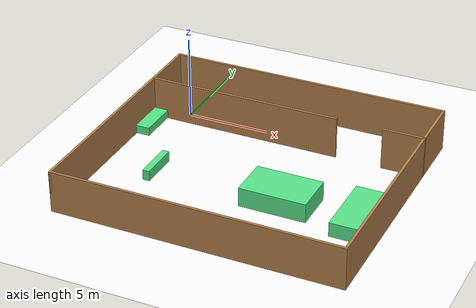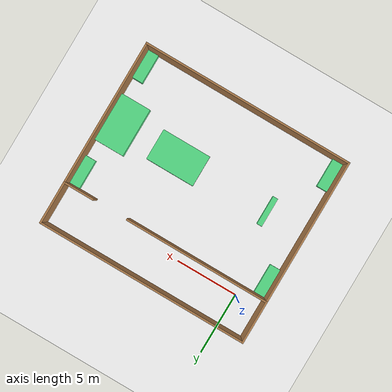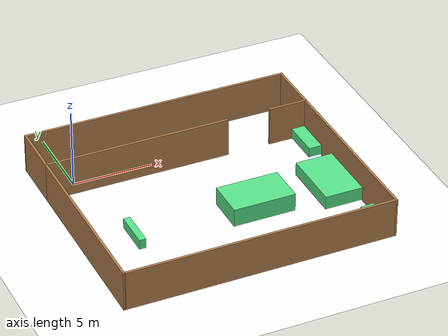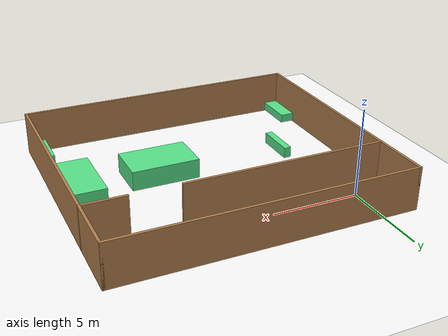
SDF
<sdf version="1.7">
 <world name="default">
  <light name="sun" type="directional">
   <pose>0 0 10 0 -0 0</pose>
   <diffuse>0.8 0.8 0.8 1</diffuse>
   <specular>0.2 0.2 0.2 1</specular>
   <attenuation>
    <range>1000</range>
    <constant>0.9</constant>
    <linear>0.01</linear>
    <quadratic>0.001</quadratic>
   </attenuation>
   <direction>-0.5 0.1 -0.9</direction>
   <spot><inner_angle>0</inner_angle><outer_angle>0</outer_angle><falloff>0</falloff></spot>
  </light>
  <model name="ground_plane">
   <static>1</static>
   <link name="link">
    <collision name="collision">
     <geometry><plane><normal>0 0 1</normal><size>100 100</size></plane></geometry>
     <surface>
      <contact><collide_bitmask>65535</collide_bitmask></contact>
      <friction><ode><mu>100</mu><mu2>50</mu2></ode></friction>
     </surface>
    </collision>
    <visual name="visual">
     <cast_shadows>0</cast_shadows>
     <geometry><plane><normal>0 0 1</normal><size>100 100</size></plane></geometry>
     <material>
      <ambient>1.0 1.0 1.0 1</ambient>
      <diffuse>1.0 1.0 1.0 1</diffuse>
      <specular>0.01 0.01 0.01 1</specular>
      <emissive>0 0 0 1</emissive>
     </material>
    </visual>
   </link>
  </model>
  <gravity>0 0 -9.8</gravity>
  <magnetic_field>6e-06 2.3e-05 -4.2e-05</magnetic_field>
  <atmosphere type="adiabatic"/>
  <physics type="ode">
   <max_step_size>0.001</max_step_size>
   <real_time_factor>1</real_time_factor>
   <real_time_update_rate>1000</real_time_update_rate>
  </physics>
  <scene><ambient>0.4 0.4 0.4 1</ambient><background>0.7 0.7 0.7 1</background><shadows>1</shadows></scene>
  <audio><device>default</device></audio>
  <spherical_coordinates>
   <surface_model>EARTH_WGS84</surface_model>
   <latitude_deg>0</latitude_deg>
   <longitude_deg>0</longitude_deg>
   <elevation>0</elevation>
   <heading_deg>0</heading_deg>
  </spherical_coordinates>
  <model name="Walls">
   <link name="Wall_0">
    <pose>-8.425 5.8 0 0 0 -1.5708</pose>
    <visual name="Wall_0_Visual">
     <pose>0 0 1.25 0 -0 0</pose>
     <geometry><box><size>3.5 0.15 2.5</size></box></geometry>
     <material>
      <script><uri>file://media/materials/scripts/gazebo.material</uri><name>Gazebo/Wood</name></script>
      <ambient>1 1 1 1</ambient>
      <shader type="pixel"/>
     </material>
     <meta><layer>0</layer></meta>
    </visual>
    <collision name="Wall_0_Collision">
     <pose>0 0 1.25 0 -0 0</pose>
     <geometry><box><size>3.5 0.15 2.5</size></box></geometry>
     <surface>
      <friction>
       <ode><mu>1</mu><mu2>1</mu2><fdir1>0 0 0</fdir1><slip1>0</slip1><slip2>0</slip2></ode>
       <torsional>
        <coefficient>1</coefficient>
        <patch_radius>0</patch_radius>
        <surface_radius>0</surface_radius>
        <use_patch_radius>1</use_patch_radius>
        <ode><slip>0</slip></ode>
       </torsional>
      </friction>
      <bounce><restitution_coefficient>0</restitution_coefficient><threshold>1e+06</threshold></bounce>
      <contact>
       <collide_without_contact>0</collide_without_contact>
       <collide_without_contact_bitmask>1</collide_without_contact_bitmask>
       <collide_bitmask>1</collide_bitmask>
       <ode>
        <soft_cfm>0</soft_cfm>
        <soft_erp>0.2</soft_erp>
        <kp>1e+13</kp>
        <kd>1</kd>
        <max_vel>0.01</max_vel>
        <min_depth>0</min_depth>
       </ode>
       <bullet>
        <split_impulse>1</split_impulse>
        <split_impulse_penetration_threshold>-0.01</split_impulse_penetration_threshold>
        <soft_cfm>0</soft_cfm>
        <soft_erp>0.2</soft_erp>
        <kp>1e+13</kp>
        <kd>1</kd>
       </bullet>
      </contact>
     </surface>
    </collision>
   </link>
   <link name="Wall_3">
    <pose>-2.625 4.125 0 0 -0 3.14159</pose>
    <visual name="Wall_3_Visual">
     <pose>0 0 1.25 0 -0 0</pose>
     <geometry><box><size>11.75 0.15 2.5</size></box></geometry>
     <material>
      <script><uri>file://media/materials/scripts/gazebo.material</uri><name>Gazebo/Wood</name></script>
      <ambient>1 1 1 1</ambient>
      <shader type="pixel"/>
     </material>
     <meta><layer>0</layer></meta>
    </visual>
    <collision name="Wall_3_Collision">
     <pose>0 0 1.25 0 -0 0</pose>
     <geometry><box><size>11.75 0.15 2.5</size></box></geometry>
     <surface>
      <friction>
       <ode><mu>1</mu><mu2>1</mu2><fdir1>0 0 0</fdir1><slip1>0</slip1><slip2>0</slip2></ode>
       <torsional>
        <coefficient>1</coefficient>
        <patch_radius>0</patch_radius>
        <surface_radius>0</surface_radius>
        <use_patch_radius>1</use_patch_radius>
        <ode><slip>0</slip></ode>
       </torsional>
      </friction>
      <bounce><restitution_coefficient>0</restitution_coefficient><threshold>1e+06</threshold></bounce>
      <contact>
       <collide_without_contact>0</collide_without_contact>
       <collide_without_contact_bitmask>1</collide_without_contact_bitmask>
       <collide_bitmask>1</collide_bitmask>
       <ode>
        <soft_cfm>0</soft_cfm>
        <soft_erp>0.2</soft_erp>
        <kp>1e+13</kp>
        <kd>1</kd>
        <max_vel>0.01</max_vel>
        <min_depth>0</min_depth>
       </ode>
       <bullet>
        <split_impulse>1</split_impulse>
        <split_impulse_penetration_threshold>-0.01</split_impulse_penetration_threshold>
        <soft_cfm>0</soft_cfm>
        <soft_erp>0.2</soft_erp>
        <kp>1e+13</kp>
        <kd>1</kd>
       </bullet>
      </contact>
     </surface>
    </collision>
   </link>
   <link name="Wall_35">
    <pose>8.425 5.8 0 0 0 -1.5708</pose>
    <visual name="Wall_35_Visual">
     <pose>0 0 1.25 0 -0 0</pose>
     <geometry><box><size>3.5 0.15 2.5</size></box></geometry>
     <material>
      <script><uri>file://media/materials/scripts/gazebo.material</uri><name>Gazebo/Wood</name></script>
      <ambient>1 1 1 1</ambient>
      <shader type="pixel"/>
     </material>
     <meta><layer>0</layer></meta>
    </visual>
    <collision name="Wall_35_Collision">
     <pose>0 0 1.25 0 -0 0</pose>
     <geometry><box><size>3.5 0.15 2.5</size></box></geometry>
     <surface>
      <friction>
       <ode><mu>1</mu><mu2>1</mu2><fdir1>0 0 0</fdir1><slip1>0</slip1><slip2>0</slip2></ode>
       <torsional>
        <coefficient>1</coefficient>
        <patch_radius>0</patch_radius>
        <surface_radius>0</surface_radius>
        <use_patch_radius>1</use_patch_radius>
        <ode><slip>0</slip></ode>
       </torsional>
      </friction>
      <bounce><restitution_coefficient>0</restitution_coefficient><threshold>1e+06</threshold></bounce>
      <contact>
       <collide_without_contact>0</collide_without_contact>
       <collide_without_contact_bitmask>1</collide_without_contact_bitmask>
       <collide_bitmask>1</collide_bitmask>
       <ode>
        <soft_cfm>0</soft_cfm>
        <soft_erp>0.2</soft_erp>
        <kp>1e+13</kp>
        <kd>1</kd>
        <max_vel>0.01</max_vel>
        <min_depth>0</min_depth>
       </ode>
       <bullet>
        <split_impulse>1</split_impulse>
        <split_impulse_penetration_threshold>-0.01</split_impulse_penetration_threshold>
        <soft_cfm>0</soft_cfm>
        <soft_erp>0.2</soft_erp>
        <kp>1e+13</kp>
        <kd>1</kd>
       </bullet>
      </contact>
     </surface>
    </collision>
   </link>
   <link name="Wall_36">
    <pose>7.25 4.125 0 0 -0 3.14159</pose>
    <visual name="Wall_36_Visual">
     <pose>0 0 1.25 0 -0 0</pose>
     <geometry><box><size>2.5 0.15 2.5</size></box></geometry>
     <material>
      <script><uri>file://media/materials/scripts/gazebo.material</uri><name>Gazebo/Wood</name></script>
      <ambient>1 1 1 1</ambient>
      <shader type="pixel"/>
     </material>
     <meta><layer>0</layer></meta>
    </visual>
    <collision name="Wall_36_Collision">
     <pose>0 0 1.25 0 -0 0</pose>
     <geometry><box><size>2.5 0.15 2.5</size></box></geometry>
     <surface>
      <friction>
       <ode><mu>1</mu><mu2>1</mu2><fdir1>0 0 0</fdir1><slip1>0</slip1><slip2>0</slip2></ode>
       <torsional>
        <coefficient>1</coefficient>
        <patch_radius>0</patch_radius>
        <surface_radius>0</surface_radius>
        <use_patch_radius>1</use_patch_radius>
        <ode><slip>0</slip></ode>
       </torsional>
      </friction>
      <bounce><restitution_coefficient>0</restitution_coefficient><threshold>1e+06</threshold></bounce>
      <contact>
       <collide_without_contact>0</collide_without_contact>
       <collide_without_contact_bitmask>1</collide_without_contact_bitmask>
       <collide_bitmask>1</collide_bitmask>
       <ode>
        <soft_cfm>0</soft_cfm>
        <soft_erp>0.2</soft_erp>
        <kp>1e+13</kp>
        <kd>1</kd>
        <max_vel>0.01</max_vel>
        <min_depth>0</min_depth>
       </ode>
       <bullet>
        <split_impulse>1</split_impulse>
        <split_impulse_penetration_threshold>-0.01</split_impulse_penetration_threshold>
        <soft_cfm>0</soft_cfm>
        <soft_erp>0.2</soft_erp>
        <kp>1e+13</kp>
        <kd>1</kd>
       </bullet>
      </contact>
     </surface>
    </collision>
   </link>
   <link name="Wall_38">
    <pose>-8.425 -1.675 0 0 0 -1.5708</pose>
    <visual name="Wall_38_Visual">
     <pose>0 0 1.25 0 -0 0</pose>
     <geometry><box><size>11.75 0.15 2.5</size></box></geometry>
     <material>
      <script><uri>file://media/materials/scripts/gazebo.material</uri><name>Gazebo/Wood</name></script>
      <ambient>1 1 1 1</ambient>
      <shader type="pixel"/>
     </material>
     <meta><layer>0</layer></meta>
    </visual>
    <collision name="Wall_38_Collision">
     <pose>0 0 1.25 0 -0 0</pose>
     <geometry><box><size>11.75 0.15 2.5</size></box></geometry>
     <surface>
      <friction>
       <ode><mu>1</mu><mu2>1</mu2><fdir1>0 0 0</fdir1><slip1>0</slip1><slip2>0</slip2></ode>
       <torsional>
        <coefficient>1</coefficient>
        <patch_radius>0</patch_radius>
        <surface_radius>0</surface_radius>
        <use_patch_radius>1</use_patch_radius>
        <ode><slip>0</slip></ode>
       </torsional>
      </friction>
      <bounce><restitution_coefficient>0</restitution_coefficient><threshold>1e+06</threshold></bounce>
      <contact>
       <collide_without_contact>0</collide_without_contact>
       <collide_without_contact_bitmask>1</collide_without_contact_bitmask>
       <collide_bitmask>1</collide_bitmask>
       <ode>
        <soft_cfm>0</soft_cfm>
        <soft_erp>0.2</soft_erp>
        <kp>1e+13</kp>
        <kd>1</kd>
        <max_vel>0.01</max_vel>
        <min_depth>0</min_depth>
       </ode>
       <bullet>
        <split_impulse>1</split_impulse>
        <split_impulse_penetration_threshold>-0.01</split_impulse_penetration_threshold>
        <soft_cfm>0</soft_cfm>
        <soft_erp>0.2</soft_erp>
        <kp>1e+13</kp>
        <kd>1</kd>
       </bullet>
      </contact>
     </surface>
    </collision>
   </link>
   <link name="Wall_39">
    <pose>0 -7.475 0 0 -0 0</pose>
    <visual name="Wall_39_Visual">
     <pose>0 0 1.25 0 -0 0</pose>
     <geometry><box><size>17 0.15 2.5</size></box></geometry>
     <material>
      <script><uri>file://media/materials/scripts/gazebo.material</uri><name>Gazebo/Wood</name></script>
      <ambient>1 1 1 1</ambient>
      <shader type="pixel"/>
     </material>
     <meta><layer>0</layer></meta>
    </visual>
    <collision name="Wall_39_Collision">
     <pose>0 0 1.25 0 -0 0</pose>
     <geometry><box><size>17 0.15 2.5</size></box></geometry>
     <surface>
      <friction>
       <ode><mu>1</mu><mu2>1</mu2><fdir1>0 0 0</fdir1><slip1>0</slip1><slip2>0</slip2></ode>
       <torsional>
        <coefficient>1</coefficient>
        <patch_radius>0</patch_radius>
        <surface_radius>0</surface_radius>
        <use_patch_radius>1</use_patch_radius>
        <ode><slip>0</slip></ode>
       </torsional>
      </friction>
      <bounce><restitution_coefficient>0</restitution_coefficient><threshold>1e+06</threshold></bounce>
      <contact>
       <collide_without_contact>0</collide_without_contact>
       <collide_without_contact_bitmask>1</collide_without_contact_bitmask>
       <collide_bitmask>1</collide_bitmask>
       <ode>
        <soft_cfm>0</soft_cfm>
        <soft_erp>0.2</soft_erp>
        <kp>1e+13</kp>
        <kd>1</kd>
        <max_vel>0.01</max_vel>
        <min_depth>0</min_depth>
       </ode>
       <bullet>
        <split_impulse>1</split_impulse>
        <split_impulse_penetration_threshold>-0.01</split_impulse_penetration_threshold>
        <soft_cfm>0</soft_cfm>
        <soft_erp>0.2</soft_erp>
        <kp>1e+13</kp>
        <kd>1</kd>
       </bullet>
      </contact>
     </surface>
    </collision>
   </link>
   <link name="Wall_40">
    <pose>8.425 -1.675 0 0 -0 1.5708</pose>
    <visual name="Wall_40_Visual">
     <pose>0 0 1.25 0 -0 0</pose>
     <geometry><box><size>11.75 0.15 2.5</size></box></geometry>
     <material>
      <script><uri>file://media/materials/scripts/gazebo.material</uri><name>Gazebo/Wood</name></script>
      <ambient>1 1 1 1</ambient>
      <shader type="pixel"/>
     </material>
     <meta><layer>0</layer></meta>
    </visual>
    <collision name="Wall_40_Collision">
     <pose>0 0 1.25 0 -0 0</pose>
     <geometry><box><size>11.75 0.15 2.5</size></box></geometry>
     <surface>
      <friction>
       <ode><mu>1</mu><mu2>1</mu2><fdir1>0 0 0</fdir1><slip1>0</slip1><slip2>0</slip2></ode>
       <torsional>
        <coefficient>1</coefficient>
        <patch_radius>0</patch_radius>
        <surface_radius>0</surface_radius>
        <use_patch_radius>1</use_patch_radius>
        <ode><slip>0</slip></ode>
       </torsional>
      </friction>
      <bounce><restitution_coefficient>0</restitution_coefficient><threshold>1e+06</threshold></bounce>
      <contact>
       <collide_without_contact>0</collide_without_contact>
       <collide_without_contact_bitmask>1</collide_without_contact_bitmask>
       <collide_bitmask>1</collide_bitmask>
       <ode>
        <soft_cfm>0</soft_cfm>
        <soft_erp>0.2</soft_erp>
        <kp>1e+13</kp>
        <kd>1</kd>
        <max_vel>0.01</max_vel>
        <min_depth>0</min_depth>
       </ode>
       <bullet>
        <split_impulse>1</split_impulse>
        <split_impulse_penetration_threshold>-0.01</split_impulse_penetration_threshold>
        <soft_cfm>0</soft_cfm>
        <soft_erp>0.2</soft_erp>
        <kp>1e+13</kp>
        <kd>1</kd>
       </bullet>
      </contact>
     </surface>
    </collision>
   </link>
   <link name="Wall_5">
    <pose>0 7.475 0 0 -0 0</pose>
    <visual name="Wall_5_Visual">
     <pose>0 0 1.25 0 -0 0</pose>
     <geometry><box><size>17 0.15 2.5</size></box></geometry>
     <material>
      <script><uri>file://media/materials/scripts/gazebo.material</uri><name>Gazebo/Wood</name></script>
      <ambient>1 1 1 1</ambient>
      <shader type="pixel"/>
     </material>
     <meta><layer>0</layer></meta>
    </visual>
    <collision name="Wall_5_Collision">
     <pose>0 0 1.25 0 -0 0</pose>
     <geometry><box><size>17 0.15 2.5</size></box></geometry>
     <surface>
      <friction>
       <ode><mu>1</mu><mu2>1</mu2><fdir1>0 0 0</fdir1><slip1>0</slip1><slip2>0</slip2></ode>
       <torsional>
        <coefficient>1</coefficient>
        <patch_radius>0</patch_radius>
        <surface_radius>0</surface_radius>
        <use_patch_radius>1</use_patch_radius>
        <ode><slip>0</slip></ode>
       </torsional>
      </friction>
      <bounce><restitution_coefficient>0</restitution_coefficient><threshold>1e+06</threshold></bounce>
      <contact>
       <collide_without_contact>0</collide_without_contact>
       <collide_without_contact_bitmask>1</collide_without_contact_bitmask>
       <collide_bitmask>1</collide_bitmask>
       <ode>
        <soft_cfm>0</soft_cfm>
        <soft_erp>0.2</soft_erp>
        <kp>1e+13</kp>
        <kd>1</kd>
        <max_vel>0.01</max_vel>
        <min_depth>0</min_depth>
       </ode>
       <bullet>
        <split_impulse>1</split_impulse>
        <split_impulse_penetration_threshold>-0.01</split_impulse_penetration_threshold>
        <soft_cfm>0</soft_cfm>
        <soft_erp>0.2</soft_erp>
        <kp>1e+13</kp>
        <kd>1</kd>
       </bullet>
      </contact>
     </surface>
    </collision>
   </link>
   <static>1</static>
   <pose>6.46145 -4.96706 0 0 -0 0</pose>
  </model>
  <model name="unit_box">
   <link name="link">
    <inertial>
     <mass>11.28</mass>
     <inertia><ixx>7.06801</ixx><ixy>0</ixy><ixz>0</ixz><iyy>15.8747</iyy><iyz>0</iyz><izz>20.4655</izz></inertia>
    </inertial>
    <pose>1.92224 -1.71667 0 0 -0 0</pose>
    <visual name="visual">
     <geometry><box><size>3.94593 2.49029 1.14789</size></box></geometry>
     <material>
      <script><name>Gazebo/Grey</name><uri>file://media/materials/scripts/gazebo.material</uri></script>
      <shader type="pixel"><normal_map>__default__</normal_map></shader>
      <ambient>0.341 0.89 0.537 1</ambient>
      <diffuse>0.341 0.89 0.537 1</diffuse>
      <specular>0.01 0.01 0.01 1</specular>
      <emissive>0 0 0 1</emissive>
     </material>
    </visual>
    <collision name="collision">
     <geometry><box><size>3.94593 2.49029 1.14789</size></box></geometry>
     <surface>
      <friction>
       <ode><mu>1</mu><mu2>1</mu2><fdir1>0 0 0</fdir1><slip1>0</slip1><slip2>0</slip2></ode>
       <torsional>
        <coefficient>1</coefficient>
        <patch_radius>0</patch_radius>
        <surface_radius>0</surface_radius>
        <use_patch_radius>1</use_patch_radius>
        <ode><slip>0</slip></ode>
       </torsional>
      </friction>
      <bounce><restitution_coefficient>0</restitution_coefficient><threshold>1e+06</threshold></bounce>
      <contact>
       <collide_without_contact>0</collide_without_contact>
       <collide_without_contact_bitmask>1</collide_without_contact_bitmask>
       <collide_bitmask>1</collide_bitmask>
       <ode>
        <soft_cfm>0</soft_cfm>
        <soft_erp>0.2</soft_erp>
        <kp>1e+13</kp>
        <kd>1</kd>
        <max_vel>0.01</max_vel>
        <min_depth>0</min_depth>
       </ode>
       <bullet>
        <split_impulse>1</split_impulse>
        <split_impulse_penetration_threshold>-0.01</split_impulse_penetration_threshold>
        <soft_cfm>0</soft_cfm>
        <soft_erp>0.2</soft_erp>
        <kp>1e+13</kp>
        <kd>1</kd>
       </bullet>
      </contact>
     </surface>
    </collision>
   </link>
   <link name="link_1">
    <inertial>
     <mass>1.24178</mass>
     <inertia><ixx>0.6147</ixx><ixy>0</ixy><ixz>0</ixz><iyy>0.114065</iyy><iyz>0</iyz><izz>0.648027</izz></inertia>
    </inertial>
    <pose>7.4756 2.76031 -0.185888 0 -0 0</pose>
    <visual name="visual">
     <geometry><box><size>0.843898 2.35585 0.624586</size></box></geometry>
     <material>
      <lighting>1</lighting>
      <script><uri>file://media/materials/scripts/gazebo.material</uri><name>Gazebo/Grey</name></script>
      <shader type="pixel"><normal_map>__default__</normal_map></shader>
      <ambient>0.341 0.89 0.537 1</ambient>
      <diffuse>0.341 0.89 0.537 1</diffuse>
      <specular>0.01 0.01 0.01 1</specular>
      <emissive>0 0 0 1</emissive>
     </material>
    </visual>
    <collision name="collision">
     <geometry><box><size>0.843898 2.35585 0.624586</size></box></geometry>
     <surface>
      <friction>
       <ode><mu>1</mu><mu2>1</mu2><fdir1>0 0 0</fdir1><slip1>0</slip1><slip2>0</slip2></ode>
       <torsional>
        <coefficient>1</coefficient>
        <patch_radius>0</patch_radius>
        <surface_radius>0</surface_radius>
        <use_patch_radius>1</use_patch_radius>
        <ode><slip>0</slip></ode>
       </torsional>
      </friction>
      <bounce><restitution_coefficient>0</restitution_coefficient><threshold>1e+06</threshold></bounce>
      <contact>
       <collide_without_contact>0</collide_without_contact>
       <collide_without_contact_bitmask>1</collide_without_contact_bitmask>
       <collide_bitmask>1</collide_bitmask>
       <ode>
        <soft_cfm>0</soft_cfm>
        <soft_erp>0.2</soft_erp>
        <kp>1e+13</kp>
        <kd>1</kd>
        <max_vel>0.01</max_vel>
        <min_depth>0</min_depth>
       </ode>
       <bullet>
        <split_impulse>1</split_impulse>
        <split_impulse_penetration_threshold>-0.01</split_impulse_penetration_threshold>
        <soft_cfm>0</soft_cfm>
        <soft_erp>0.2</soft_erp>
        <kp>1e+13</kp>
        <kd>1</kd>
       </bullet>
      </contact>
     </surface>
    </collision>
   </link>
   <link name="link_1_clone">
    <inertial>
     <mass>1.25385</mass>
     <inertia>
      <ixx>0.621468</ixx>
      <ixy>0</ixy>
      <ixz>0</ixz>
      <iyy>0.115971</iyy>
      <iyz>0</iyz>
      <izz>0.654321</izz>
     </inertia>
    </inertial>
    <pose>7.45742 -6.29002 -0.181681 0 -0 0</pose>
    <visual name="visual">
     <geometry><box><size>0.843898 2.35585 0.630669</size></box></geometry>
     <material>
      <lighting>1</lighting>
      <script><uri>file://media/materials/scripts/gazebo.material</uri><name>Gazebo/Grey</name></script>
      <shader type="pixel"><normal_map>__default__</normal_map></shader>
      <ambient>0.341 0.89 0.537 1</ambient>
      <diffuse>0.341 0.89 0.537 1</diffuse>
      <specular>0.01 0.01 0.01 1</specular>
      <emissive>0 0 0 1</emissive>
     </material>
    </visual>
    <collision name="collision">
     <geometry><box><size>0.843898 2.35585 0.630669</size></box></geometry>
     <surface>
      <friction>
       <ode><mu>1</mu><mu2>1</mu2><fdir1>0 0 0</fdir1><slip1>0</slip1><slip2>0</slip2></ode>
       <torsional>
        <coefficient>1</coefficient>
        <patch_radius>0</patch_radius>
        <surface_radius>0</surface_radius>
        <use_patch_radius>1</use_patch_radius>
        <ode><slip>0</slip></ode>
       </torsional>
      </friction>
      <bounce><restitution_coefficient>0</restitution_coefficient><threshold>1e+06</threshold></bounce>
      <contact>
       <collide_without_contact>0</collide_without_contact>
       <collide_without_contact_bitmask>1</collide_without_contact_bitmask>
       <collide_bitmask>1</collide_bitmask>
       <ode>
        <soft_cfm>0</soft_cfm>
        <soft_erp>0.2</soft_erp>
        <kp>1e+13</kp>
        <kd>1</kd>
        <max_vel>0.01</max_vel>
        <min_depth>0</min_depth>
       </ode>
       <bullet>
        <split_impulse>1</split_impulse>
        <split_impulse_penetration_threshold>-0.01</split_impulse_penetration_threshold>
        <soft_cfm>0</soft_cfm>
        <soft_erp>0.2</soft_erp>
        <kp>1e+13</kp>
        <kd>1</kd>
       </bullet>
      </contact>
     </surface>
    </collision>
   </link>
   <link name="link_1_clone_clone_clone">
    <inertial>
     <mass>1.00095</mass>
     <inertia>
      <ixx>0.484085</ixx>
      <ixy>0</ixy>
      <ixz>0</ixz>
      <iyy>0.0805465</iyy>
      <iyz>0</iyz>
      <izz>0.522346</izz>
     </inertia>
    </inertial>
    <pose>-8.36972 2.7403 -0.270905 0 -0 0</pose>
    <visual name="visual">
     <geometry><box><size>0.843898 2.35585 0.503463</size></box></geometry>
     <material>
      <lighting>1</lighting>
      <script><uri>file://media/materials/scripts/gazebo.material</uri><name>Gazebo/Grey</name></script>
      <shader type="pixel"><normal_map>__default__</normal_map></shader>
      <ambient>0.341 0.89 0.537 1</ambient>
      <diffuse>0.341 0.89 0.537 1</diffuse>
      <specular>0.01 0.01 0.01 1</specular>
      <emissive>0 0 0 1</emissive>
     </material>
    </visual>
    <collision name="collision">
     <geometry><box><size>0.843898 2.35585 0.503463</size></box></geometry>
     <surface>
      <friction>
       <ode><mu>1</mu><mu2>1</mu2><fdir1>0 0 0</fdir1><slip1>0</slip1><slip2>0</slip2></ode>
       <torsional>
        <coefficient>1</coefficient>
        <patch_radius>0</patch_radius>
        <surface_radius>0</surface_radius>
        <use_patch_radius>1</use_patch_radius>
        <ode><slip>0</slip></ode>
       </torsional>
      </friction>
      <bounce><restitution_coefficient>0</restitution_coefficient><threshold>1e+06</threshold></bounce>
      <contact>
       <collide_without_contact>0</collide_without_contact>
       <collide_without_contact_bitmask>1</collide_without_contact_bitmask>
       <collide_bitmask>1</collide_bitmask>
       <ode>
        <soft_cfm>0</soft_cfm>
        <soft_erp>0.2</soft_erp>
        <kp>1e+13</kp>
        <kd>1</kd>
        <max_vel>0.01</max_vel>
        <min_depth>0</min_depth>
       </ode>
       <bullet>
        <split_impulse>1</split_impulse>
        <split_impulse_penetration_threshold>-0.01</split_impulse_penetration_threshold>
        <soft_cfm>0</soft_cfm>
        <soft_erp>0.2</soft_erp>
        <kp>1e+13</kp>
        <kd>1</kd>
       </bullet>
      </contact>
     </surface>
    </collision>
   </link>
   <link name="link_1_clone_clone_clone_0">
    <inertial>
     <mass>0.619845</mass>
     <inertia>
      <ixx>0.30725</ixx>
      <ixy>0</ixy>
      <ixz>0</ixz>
      <iyy>0.0295499</iyy>
      <iyz>0</iyz>
      <izz>0.29566</izz>
     </inertia>
    </inertial>
    <pose>-5.74785 -1.68892 -0.181433 0 -0 0</pose>
    <visual name="visual">
     <geometry><box><size>0.416943 2.35585 0.631058</size></box></geometry>
     <material>
      <lighting>1</lighting>
      <script><uri>file://media/materials/scripts/gazebo.material</uri><name>Gazebo/Grey</name></script>
      <shader type="pixel"><normal_map>__default__</normal_map></shader>
      <ambient>0.341 0.89 0.537 1</ambient>
      <diffuse>0.341 0.89 0.537 1</diffuse>
      <specular>0.01 0.01 0.01 1</specular>
      <emissive>0 0 0 1</emissive>
     </material>
    </visual>
    <collision name="collision">
     <geometry><box><size>0.416943 2.35585 0.631058</size></box></geometry>
     <surface>
      <friction>
       <ode><mu>1</mu><mu2>1</mu2><fdir1>0 0 0</fdir1><slip1>0</slip1><slip2>0</slip2></ode>
       <torsional>
        <coefficient>1</coefficient>
        <patch_radius>0</patch_radius>
        <surface_radius>0</surface_radius>
        <use_patch_radius>1</use_patch_radius>
        <ode><slip>0</slip></ode>
       </torsional>
      </friction>
      <bounce><restitution_coefficient>0</restitution_coefficient><threshold>1e+06</threshold></bounce>
      <contact>
       <collide_without_contact>0</collide_without_contact>
       <collide_without_contact_bitmask>1</collide_without_contact_bitmask>
       <collide_bitmask>1</collide_bitmask>
       <ode>
        <soft_cfm>0</soft_cfm>
        <soft_erp>0.2</soft_erp>
        <kp>1e+13</kp>
        <kd>1</kd>
        <max_vel>0.01</max_vel>
        <min_depth>0</min_depth>
       </ode>
       <bullet>
        <split_impulse>1</split_impulse>
        <split_impulse_penetration_threshold>-0.01</split_impulse_penetration_threshold>
        <soft_cfm>0</soft_cfm>
        <soft_erp>0.2</soft_erp>
        <kp>1e+13</kp>
        <kd>1</kd>
       </bullet>
      </contact>
     </surface>
    </collision>
   </link>
   <link name="link_1_clone_clone_clone_clone">
    <inertial>
     <mass>1.00095</mass>
     <inertia>
      <ixx>0.484085</ixx>
      <ixy>0</ixy>
      <ixz>0</ixz>
      <iyy>0.0805465</iyy>
      <iyz>0</iyz>
      <izz>0.522346</izz>
     </inertia>
    </inertial>
    <pose>-8.37749 -6.35252 -0.270905 0 -0 0</pose>
    <visual name="visual">
     <geometry><box><size>0.843898 2.35585 0.503463</size></box></geometry>
     <material>
      <lighting>1</lighting>
      <script><uri>file://media/materials/scripts/gazebo.material</uri><name>Gazebo/Grey</name></script>
      <shader type="pixel"><normal_map>__default__</normal_map></shader>
      <ambient>0.341 0.89 0.537 1</ambient>
      <diffuse>0.341 0.89 0.537 1</diffuse>
      <specular>0.01 0.01 0.01 1</specular>
      <emissive>0 0 0 1</emissive>
     </material>
    </visual>
    <collision name="collision">
     <geometry><box><size>0.843898 2.35585 0.503463</size></box></geometry>
     <surface>
      <friction>
       <ode><mu>1</mu><mu2>1</mu2><fdir1>0 0 0</fdir1><slip1>0</slip1><slip2>0</slip2></ode>
       <torsional>
        <coefficient>1</coefficient>
        <patch_radius>0</patch_radius>
        <surface_radius>0</surface_radius>
        <use_patch_radius>1</use_patch_radius>
        <ode><slip>0</slip></ode>
       </torsional>
      </friction>
      <bounce><restitution_coefficient>0</restitution_coefficient><threshold>1e+06</threshold></bounce>
      <contact>
       <collide_without_contact>0</collide_without_contact>
       <collide_without_contact_bitmask>1</collide_without_contact_bitmask>
       <collide_bitmask>1</collide_bitmask>
       <ode>
        <soft_cfm>0</soft_cfm>
        <soft_erp>0.2</soft_erp>
        <kp>1e+13</kp>
        <kd>1</kd>
        <max_vel>0.01</max_vel>
        <min_depth>0</min_depth>
       </ode>
       <bullet>
        <split_impulse>1</split_impulse>
        <split_impulse_penetration_threshold>-0.01</split_impulse_penetration_threshold>
        <soft_cfm>0</soft_cfm>
        <soft_erp>0.2</soft_erp>
        <kp>1e+13</kp>
        <kd>1</kd>
       </bullet>
      </contact>
     </surface>
    </collision>
   </link>
   <link name="link_2">
    <inertial>
     <mass>8.13343</mass>
     <inertia><ixx>11.0079</ixx><ixy>0</ixy><ixz>0</ixz><iyy>4.42261</iyy><iyz>0</iyz><izz>14.4313</izz></inertia>
    </inertial>
    <pose>6.70635 -1.71905 -0.08614 0 -0 0</pose>
    <visual name="visual">
     <geometry><box><size>2.40583 3.93749 0.858528</size></box></geometry>
     <material>
      <lighting>1</lighting>
      <script><uri>file://media/materials/scripts/gazebo.material</uri><name>Gazebo/Grey</name></script>
      <shader type="pixel"><normal_map>__default__</normal_map></shader>
      <ambient>0.341 0.89 0.537 1</ambient>
      <diffuse>0.341 0.89 0.537 1</diffuse>
      <specular>0.01 0.01 0.01 1</specular>
      <emissive>0 0 0 1</emissive>
     </material>
    </visual>
    <collision name="collision">
     <geometry><box><size>2.40583 3.93749 0.858528</size></box></geometry>
     <surface>
      <friction>
       <ode><mu>1</mu><mu2>1</mu2><fdir1>0 0 0</fdir1><slip1>0</slip1><slip2>0</slip2></ode>
       <torsional>
        <coefficient>1</coefficient>
        <patch_radius>0</patch_radius>
        <surface_radius>0</surface_radius>
        <use_patch_radius>1</use_patch_radius>
        <ode><slip>0</slip></ode>
       </torsional>
      </friction>
      <bounce><restitution_coefficient>0</restitution_coefficient><threshold>1e+06</threshold></bounce>
      <contact>
       <collide_without_contact>0</collide_without_contact>
       <collide_without_contact_bitmask>1</collide_without_contact_bitmask>
       <collide_bitmask>1</collide_bitmask>
       <ode>
        <soft_cfm>0</soft_cfm>
        <soft_erp>0.2</soft_erp>
        <kp>1e+13</kp>
        <kd>1</kd>
        <max_vel>0.01</max_vel>
        <min_depth>0</min_depth>
       </ode>
       <bullet>
        <split_impulse>1</split_impulse>
        <split_impulse_penetration_threshold>-0.01</split_impulse_penetration_threshold>
        <soft_cfm>0</soft_cfm>
        <soft_erp>0.2</soft_erp>
        <kp>1e+13</kp>
        <kd>1</kd>
       </bullet>
      </contact>
     </surface>
    </collision>
   </link>
   <static>0</static>
   <pose>6.9085 -4.869 0.573945 0 -0 0</pose>
  </model>
 </world>
</sdf>
